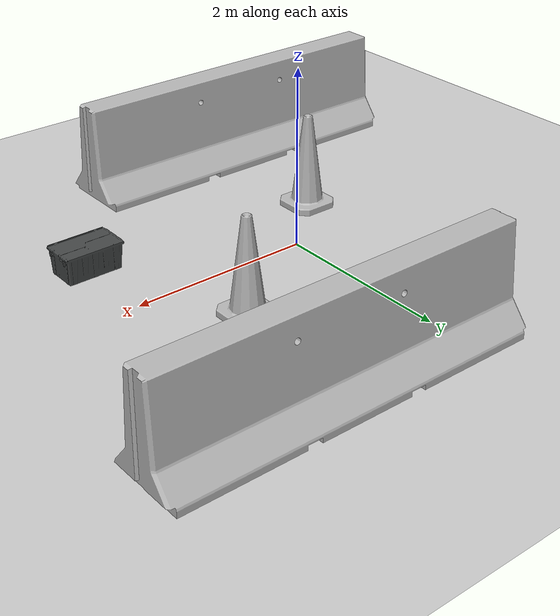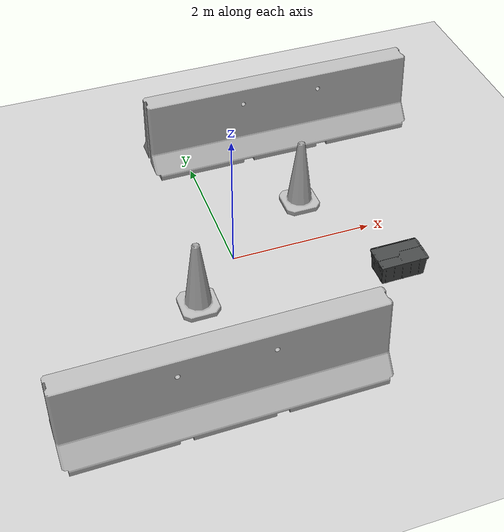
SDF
<sdf version="1.7">
 <world name="default">
  <light name="sun" type="directional">
   <pose>0 0 10 0 -0 0</pose>
   <diffuse>0.8 0.8 0.8 1</diffuse>
   <specular>0.2 0.2 0.2 1</specular>
   <attenuation>
    <range>1000</range>
    <constant>0.9</constant>
    <linear>0.01</linear>
    <quadratic>0.001</quadratic>
   </attenuation>
   <direction>-0.5 0.1 -0.9</direction>
   <spot><inner_angle>0</inner_angle><outer_angle>0</outer_angle><falloff>0</falloff></spot>
  </light>
  <model name="ground_plane">
   <static>1</static>
   <link name="link">
    <collision name="collision">
     <geometry><plane><normal>0 0 1</normal><size>100 100</size></plane></geometry>
     <surface><friction><ode><mu>100</mu><mu2>50</mu2></ode></friction></surface>
    </collision>
    <visual name="visual">
     <cast_shadows>0</cast_shadows>
     <geometry><plane><normal>0 0 1</normal><size>100 100</size></plane></geometry>
     <material>
      <script><uri>file://media/materials/scripts/gazebo.material</uri><name>Gazebo/Grey</name></script>
     </material>
    </visual>
   </link>
  </model>
  <gravity>0 0 -9.8</gravity>
  <magnetic_field>6e-06 2.3e-05 -4.2e-05</magnetic_field>
  <atmosphere type="adiabatic"/>
  <physics type="ode">
   <max_step_size>0.001</max_step_size>
   <real_time_factor>1</real_time_factor>
   <real_time_update_rate>1000</real_time_update_rate>
  </physics>
  <scene><ambient>0.4 0.4 0.4 1</ambient><background>0.7 0.7 0.7 1</background><shadows>1</shadows></scene>
  <spherical_coordinates>
   <surface_model>EARTH_WGS84</surface_model>
   <latitude_deg>0</latitude_deg>
   <longitude_deg>0</longitude_deg>
   <elevation>0</elevation>
   <heading_deg>0</heading_deg>
  </spherical_coordinates>
  <model name="jersey_barrier">
   <static>1</static>
   <link name="link">
    <visual name="visual">
     <geometry><mesh><uri>model://jersey_barrier/meshes/jersey_barrier.dae</uri></mesh></geometry>
    </visual>
    <collision name="upright">
     <pose>0 0 0.5715 0 -0 0</pose>
     <geometry><box><size>4.06542 0.3063 1.143</size></box></geometry>
    </collision>
    <collision name="base">
     <pose>0 0 0.032258 0 -0 0</pose>
     <geometry><box><size>4.06542 0.8107 0.064516</size></box></geometry>
    </collision>
    <collision name="base2">
     <pose>0 0 0.1 0 -0 0</pose>
     <geometry><box><size>4.06542 0.65 0.1</size></box></geometry>
    </collision>
    <collision name="base3">
     <pose>0 0 0.2 0 -0 0</pose>
     <geometry><box><size>4.06542 0.5 0.1</size></box></geometry>
    </collision>
    <collision name="left-angle">
     <pose>0 -0.224 0.2401 0.9 -0 0</pose>
     <geometry><box><size>4.06542 0.5 0.064516</size></box></geometry>
    </collision>
    <collision name="right-angle">
     <pose>0 0.224 0.2401 -0.9 0 0</pose>
     <geometry><box><size>4.06542 0.5 0.064516</size></box></geometry>
    </collision>
   </link>
   <pose>-0.874562 -2.26502 0 0 -0 0</pose>
  </model>
  <model name="jersey_barrier_0">
   <static>1</static>
   <link name="link">
    <visual name="visual">
     <geometry><mesh><uri>model://jersey_barrier/meshes/jersey_barrier.dae</uri></mesh></geometry>
    </visual>
    <collision name="upright">
     <pose>0 0 0.5715 0 -0 0</pose>
     <geometry><box><size>4.06542 0.3063 1.143</size></box></geometry>
    </collision>
    <collision name="base">
     <pose>0 0 0.032258 0 -0 0</pose>
     <geometry><box><size>4.06542 0.8107 0.064516</size></box></geometry>
    </collision>
    <collision name="base2">
     <pose>0 0 0.1 0 -0 0</pose>
     <geometry><box><size>4.06542 0.65 0.1</size></box></geometry>
    </collision>
    <collision name="base3">
     <pose>0 0 0.2 0 -0 0</pose>
     <geometry><box><size>4.06542 0.5 0.1</size></box></geometry>
    </collision>
    <collision name="left-angle">
     <pose>0 -0.224 0.2401 0.9 -0 0</pose>
     <geometry><box><size>4.06542 0.5 0.064516</size></box></geometry>
    </collision>
    <collision name="right-angle">
     <pose>0 0.224 0.2401 -0.9 0 0</pose>
     <geometry><box><size>4.06542 0.5 0.064516</size></box></geometry>
    </collision>
   </link>
   <pose>1.49493 2.33995 0 0 -0 0</pose>
  </model>
  <model name="grey_tote">
   <link name="link">
    <inertial>
     <pose>0 0 0.14155 0 -0 0</pose>
     <mass>3.53802</mass>
     <inertia>
      <ixx>0.0688358</ixx>
      <ixy>0</ixy>
      <ixz>0</ixz>
      <iyy>0.139596</iyy>
      <iyz>0</iyz>
      <izz>0.155909</izz>
     </inertia>
    </inertial>
    <collision name="lid">
     <pose>0 0 0.28958 0 -0 0</pose>
     <geometry><box><size>0.67768 0.41298 0.01588</size></box></geometry>
    </collision>
    <collision name="lid_lip_1">
     <pose>0 0.20063 0.3048 0 -0 0</pose>
     <geometry><box><size>0.65068 0.0105 0.0127</size></box></geometry>
    </collision>
    <collision name="lid_lip_2">
     <pose>0 -0.20063 0.3048 0 -0 0</pose>
     <geometry><box><size>0.65068 0.0105 0.0127</size></box></geometry>
    </collision>
    <collision name="lid_lip_3">
     <pose>0.32585 0 0.3048 0 -0 0</pose>
     <geometry><box><size>0.02602 0.31202 0.0127</size></box></geometry>
    </collision>
    <collision name="lid_lip_4">
     <pose>-0.32585 0 0.3048 0 -0 0</pose>
     <geometry><box><size>0.02602 0.31202 0.0127</size></box></geometry>
    </collision>
    <collision name="side_wall_1">
     <pose>0 -0.18 0.14155 0.061147 -0 0</pose>
     <geometry><box><size>0.58404 0.02602 0.283099</size></box></geometry>
    </collision>
    <collision name="side_wall_2">
     <pose>0 0.18 0.14155 -0.061147 0 0</pose>
     <geometry><box><size>0.58404 0.02602 0.283099</size></box></geometry>
    </collision>
    <collision name="side_wall_3">
     <pose>0.305 0 0.14155 0 0.061147 0</pose>
     <geometry><box><size>0.02602 0.33046 0.283099</size></box></geometry>
    </collision>
    <collision name="side_wall_4">
     <pose>-0.305 0 0.14155 0 -0.061147 0</pose>
     <geometry><box><size>0.02602 0.33046 0.283099</size></box></geometry>
    </collision>
    <collision name="bottom">
     <pose>0 0 0.01 0 -0 0</pose>
     <geometry><box><size>0.58404 0.33046 0.02</size></box></geometry>
    </collision>
    <collision name="corner_1">
     <pose>0.30202 -0.175 0.14155 0.061147 0.061147 -0</pose>
     <geometry><cylinder><radius>0.01268</radius><length>0.283099</length></cylinder></geometry>
    </collision>
    <collision name="corner_2">
     <pose>-0.30202 -0.175 0.14155 0.061147 -0.061147 0</pose>
     <geometry><cylinder><radius>0.01268</radius><length>0.283099</length></cylinder></geometry>
    </collision>
    <collision name="corner_3">
     <pose>-0.30202 0.175 0.14155 -0.061147 -0.061147 -0</pose>
     <geometry><cylinder><radius>0.01268</radius><length>0.283099</length></cylinder></geometry>
    </collision>
    <collision name="corner_4">
     <pose>0.30202 0.175 0.14155 -0.061147 0.061147 0</pose>
     <geometry><cylinder><radius>0.01268</radius><length>0.283099</length></cylinder></geometry>
    </collision>
    <visual name="visual"><geometry><mesh><uri>model://grey_tote/meshes/tote.dae</uri></mesh></geometry></visual>
   </link>
   <pose>2.02417 -0.932643 0.000566 0 -0 0</pose>
  </model>
  <model name="Construction Cone">
   <link name="link">
    <collision name="collision">
     <geometry>
      <mesh><scale>10 10 10</scale><uri>model://construction_cone/meshes/construction_cone.dae</uri></mesh>
     </geometry>
    </collision>
    <visual name="visual">
     <geometry>
      <mesh><scale>10 10 10</scale><uri>model://construction_cone/meshes/construction_cone.dae</uri></mesh>
     </geometry>
    </visual>
    <inertial>
     <inertia><ixx>1</ixx><ixy>0</ixy><ixz>0</ixz><iyy>1</iyy><iyz>0</iyz><izz>1</izz></inertia>
     <mass>1</mass>
    </inertial>
   </link>
   <pose>1.27517 0.792718 -0 0 -0 0</pose>
  </model>
  <model name="Construction Cone_clone">
   <link name="link">
    <collision name="collision">
     <geometry>
      <mesh><scale>10 10 10</scale><uri>model://construction_cone/meshes/construction_cone.dae</uri></mesh>
     </geometry>
    </collision>
    <visual name="visual">
     <geometry>
      <mesh><scale>10 10 10</scale><uri>model://construction_cone/meshes/construction_cone.dae</uri></mesh>
     </geometry>
    </visual>
    <inertial>
     <inertia><ixx>1</ixx><ixy>0</ixy><ixz>0</ixz><iyy>1</iyy><iyz>0</iyz><izz>1</izz></inertia>
     <mass>1</mass>
    </inertial>
   </link>
   <pose>-0.707837 -0.66842 -0 0 -0 0</pose>
  </model>
 </world>
</sdf>
